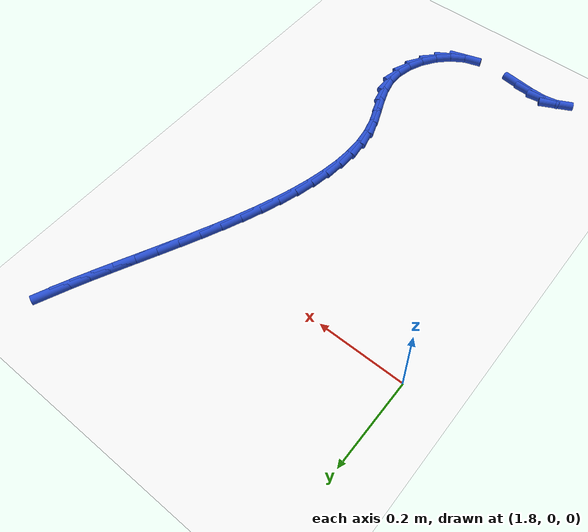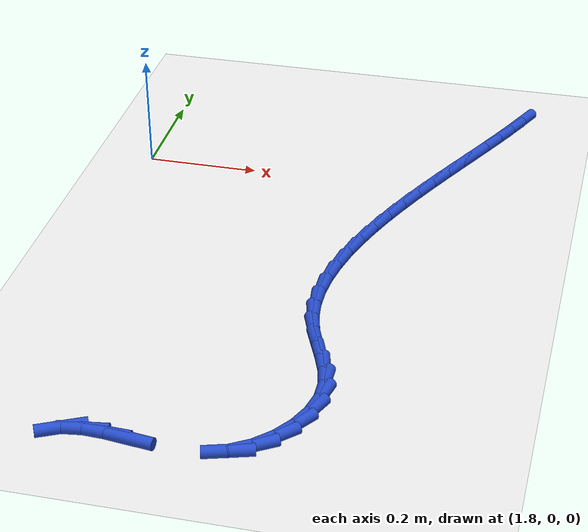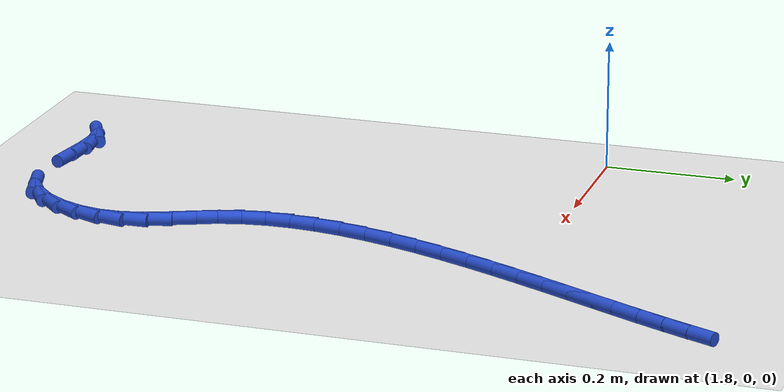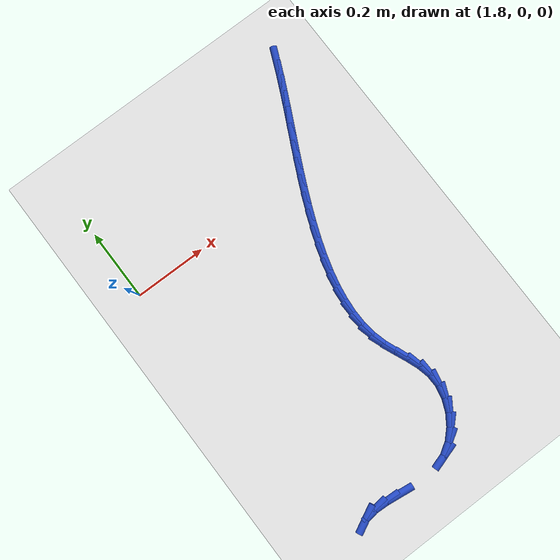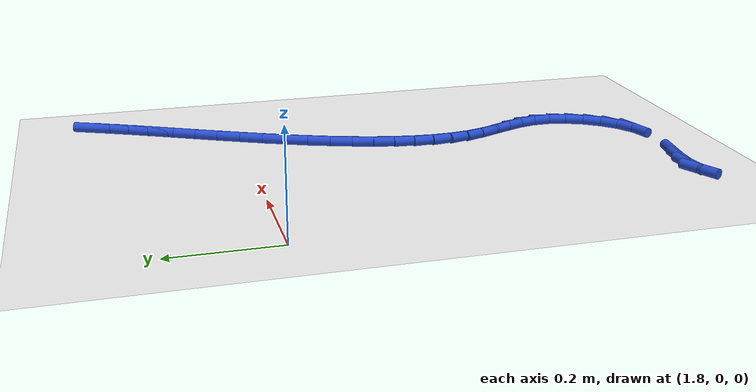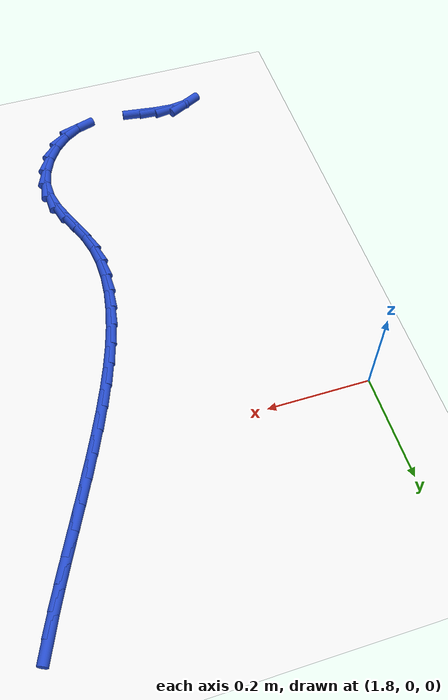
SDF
<sdf version="1.6">
 <world name="default">
  <model name="ground_plane">
   <static>1</static>
   <link name="link">
    <collision name="collision">
     <geometry><plane><normal>0 0 1</normal><size>100 100</size></plane></geometry>
     <surface><friction><ode><mu>100</mu><mu2>50</mu2></ode></friction></surface>
    </collision>
    <visual name="visual">
     <cast_shadows>0</cast_shadows>
     <geometry><plane><normal>0 0 1</normal><size>100 100</size></plane></geometry>
     <material>
      <script><uri>file://media/materials/scripts/gazebo.material</uri><name>Gazebo/WhiteGlow</name></script>
     </material>
    </visual>
   </link>
  </model>
  <model name="line">
   <link name="link_146">
    <pose>2.4614035723085523 0.2838034365155135 0.01 0 1.57 1.1549301951803006</pose>
    <collision name="collision">
     <geometry><cylinder><radius>0.01</radius><length>0.08</length></cylinder></geometry>
    </collision>
    <visual name="visual">
     <material>
      <script><name>Gazebo/Blue</name><uri>file://media/materials/scripts/gazebo.material</uri></script>
     </material>
     <geometry><cylinder><radius>0.01</radius><length>0.08</length></cylinder></geometry>
    </visual>
   </link>
   <link name="link_147">
    <pose>2.445280183010836 0.24729407132320744 0.01 0 1.57 1.1336173374537424</pose>
    <collision name="collision">
     <geometry><cylinder><radius>0.01</radius><length>0.08</length></cylinder></geometry>
    </collision>
    <visual name="visual">
     <material>
      <script><name>Gazebo/Blue</name><uri>file://media/materials/scripts/gazebo.material</uri></script>
     </material>
     <geometry><cylinder><radius>0.01</radius><length>0.08</length></cylinder></geometry>
    </visual>
   </link>
   <link name="link_148">
    <pose>2.427559085257884 0.20937490855530771 0.01 0 1.57 1.1197165428388876</pose>
    <collision name="collision">
     <geometry><cylinder><radius>0.01</radius><length>0.08</length></cylinder></geometry>
    </collision>
    <visual name="visual">
     <material>
      <script><name>Gazebo/Blue</name><uri>file://media/materials/scripts/gazebo.material</uri></script>
     </material>
     <geometry><cylinder><radius>0.01</radius><length>0.08</length></cylinder></geometry>
    </visual>
   </link>
   <link name="link_149">
    <pose>2.408594106023874 0.1702224137699297 0.01 0 1.57 1.11212798311117</pose>
    <collision name="collision">
     <geometry><cylinder><radius>0.01</radius><length>0.08</length></cylinder></geometry>
    </collision>
    <visual name="visual">
     <material>
      <script><name>Gazebo/Blue</name><uri>file://media/materials/scripts/gazebo.material</uri></script>
     </material>
     <geometry><cylinder><radius>0.01</radius><length>0.08</length></cylinder></geometry>
    </visual>
   </link>
   <link name="link_150">
    <pose>2.388739072282987 0.13001305252519355 0.01 0 1.57 1.1101440997464307</pose>
    <collision name="collision">
     <geometry><cylinder><radius>0.01</radius><length>0.08</length></cylinder></geometry>
    </collision>
    <visual name="visual">
     <material>
      <script><name>Gazebo/Blue</name><uri>file://media/materials/scripts/gazebo.material</uri></script>
     </material>
     <geometry><cylinder><radius>0.01</radius><length>0.08</length></cylinder></geometry>
    </visual>
   </link>
   <link name="link_151">
    <pose>2.3683478110094 0.0889232903792157 0.01 0 1.57 1.113354161055741</pose>
    <collision name="collision">
     <geometry><cylinder><radius>0.01</radius><length>0.08</length></cylinder></geometry>
    </collision>
    <visual name="visual">
     <material>
      <script><name>Gazebo/Blue</name><uri>file://media/materials/scripts/gazebo.material</uri></script>
     </material>
     <geometry><cylinder><radius>0.01</radius><length>0.08</length></cylinder></geometry>
    </visual>
   </link>
   <link name="link_152">
    <pose>2.3477741491772903 0.047129592890112676 0.01 0 1.57 1.121586313740963</pose>
    <collision name="collision">
     <geometry><cylinder><radius>0.01</radius><length>0.08</length></cylinder></geometry>
    </collision>
    <visual name="visual">
     <material>
      <script><name>Gazebo/Blue</name><uri>file://media/materials/scripts/gazebo.material</uri></script>
     </material>
     <geometry><cylinder><radius>0.01</radius><length>0.08</length></cylinder></geometry>
    </visual>
   </link>
   <link name="link_153">
    <pose>2.32737191376084 0.004808425616004766 0.01 0 1.57 1.1348756028969949</pose>
    <collision name="collision">
     <geometry><cylinder><radius>0.01</radius><length>0.08</length></cylinder></geometry>
    </collision>
    <visual name="visual">
     <material>
      <script><name>Gazebo/Blue</name><uri>file://media/materials/scripts/gazebo.material</uri></script>
     </material>
     <geometry><cylinder><radius>0.01</radius><length>0.08</length></cylinder></geometry>
    </visual>
   </link>
   <link name="link_154">
    <pose>2.307494931734225 -0.03786374588499303 0.01 0 1.57 1.1534509293335553</pose>
    <collision name="collision">
     <geometry><cylinder><radius>0.01</radius><length>0.08</length></cylinder></geometry>
    </collision>
    <visual name="visual">
     <material>
      <script><name>Gazebo/Blue</name><uri>file://media/materials/scripts/gazebo.material</uri></script>
     </material>
     <geometry><cylinder><radius>0.01</radius><length>0.08</length></cylinder></geometry>
    </visual>
   </link>
   <link name="link_155">
    <pose>2.288497030071626 -0.08071045605476032 0.01 0 1.57 1.1777366310051984</pose>
    <collision name="collision">
     <geometry><cylinder><radius>0.01</radius><length>0.08</length></cylinder></geometry>
    </collision>
    <visual name="visual">
     <material>
      <script><name>Gazebo/Blue</name><uri>file://media/materials/scripts/gazebo.material</uri></script>
     </material>
     <geometry><cylinder><radius>0.01</radius><length>0.08</length></cylinder></geometry>
    </visual>
   </link>
   <link name="link_156">
    <pose>2.270732035747219 -0.12355523933518187 0.01 0 1.57 1.2083656770249496</pose>
    <collision name="collision">
     <geometry><cylinder><radius>0.01</radius><length>0.08</length></cylinder></geometry>
    </collision>
    <visual name="visual">
     <material>
      <script><name>Gazebo/Blue</name><uri>file://media/materials/scripts/gazebo.material</uri></script>
     </material>
     <geometry><cylinder><radius>0.01</radius><length>0.08</length></cylinder></geometry>
    </visual>
   </link>
   <link name="link_157">
    <pose>2.2545537757351872 -0.16622163016813757 0.01 0 1.57 1.2462012889267395</pose>
    <collision name="collision">
     <geometry><cylinder><radius>0.01</radius><length>0.08</length></cylinder></geometry>
    </collision>
    <visual name="visual">
     <material>
      <script><name>Gazebo/Blue</name><uri>file://media/materials/scripts/gazebo.material</uri></script>
     </material>
     <geometry><cylinder><radius>0.01</radius><length>0.08</length></cylinder></geometry>
    </visual>
   </link>
   <link name="link_158">
    <pose>2.2403160770097053 -0.2085331629955122 0.01 0 1.57 1.2923615168987865</pose>
    <collision name="collision">
     <geometry><cylinder><radius>0.01</radius><length>0.08</length></cylinder></geometry>
    </collision>
    <visual name="visual">
     <material>
      <script><name>Gazebo/Blue</name><uri>file://media/materials/scripts/gazebo.material</uri></script>
     </material>
     <geometry><cylinder><radius>0.01</radius><length>0.08</length></cylinder></geometry>
    </visual>
   </link>
   <link name="link_159">
    <pose>2.228372766544953 -0.2503133722591855 0.01 0 1.57 1.348235454581995</pose>
    <collision name="collision">
     <geometry><cylinder><radius>0.01</radius><length>0.08</length></cylinder></geometry>
    </collision>
    <visual name="visual">
     <material>
      <script><name>Gazebo/Blue</name><uri>file://media/materials/scripts/gazebo.material</uri></script>
     </material>
     <geometry><cylinder><radius>0.01</radius><length>0.08</length></cylinder></geometry>
    </visual>
   </link>
   <link name="link_160">
    <pose>2.219077671315111 -0.291385792401041 0.01 0 1.57 1.4154679918575122</pose>
    <collision name="collision">
     <geometry><cylinder><radius>0.01</radius><length>0.08</length></cylinder></geometry>
    </collision>
    <visual name="visual">
     <material>
      <script><name>Gazebo/Blue</name><uri>file://media/materials/scripts/gazebo.material</uri></script>
     </material>
     <geometry><cylinder><radius>0.01</radius><length>0.08</length></cylinder></geometry>
    </visual>
   </link>
   <link name="link_161">
    <pose>2.2127846182943554 -0.3315739578629622 0.01 0 1.57 1.495869754893742</pose>
    <collision name="collision">
     <geometry><cylinder><radius>0.01</radius><length>0.08</length></cylinder></geometry>
    </collision>
    <visual name="visual">
     <material>
      <script><name>Gazebo/Blue</name><uri>file://media/materials/scripts/gazebo.material</uri></script>
     </material>
     <geometry><cylinder><radius>0.01</radius><length>0.08</length></cylinder></geometry>
    </visual>
   </link>
   <link name="link_162">
    <pose>2.209847434456866 -0.370701403086829 0.01 0 1.57 -1.550411000332216</pose>
    <collision name="collision">
     <geometry><cylinder><radius>0.01</radius><length>0.08</length></cylinder></geometry>
    </collision>
    <visual name="visual">
     <material>
      <script><name>Gazebo/Blue</name><uri>file://media/materials/scripts/gazebo.material</uri></script>
     </material>
     <geometry><cylinder><radius>0.01</radius><length>0.08</length></cylinder></geometry>
    </visual>
   </link>
   <link name="link_163">
    <pose>2.2106199467768217 -0.40859166251452594 0.01 0 1.57 -1.43898593780147</pose>
    <collision name="collision">
     <geometry><cylinder><radius>0.01</radius><length>0.08</length></cylinder></geometry>
    </collision>
    <visual name="visual">
     <material>
      <script><name>Gazebo/Blue</name><uri>file://media/materials/scripts/gazebo.material</uri></script>
     </material>
     <geometry><cylinder><radius>0.01</radius><length>0.08</length></cylinder></geometry>
    </visual>
   </link>
   <link name="link_164">
    <pose>2.2154559822284012 -0.4450682705879332 0.01 0 1.57 -1.3118913119048545</pose>
    <collision name="collision">
     <geometry><cylinder><radius>0.01</radius><length>0.08</length></cylinder></geometry>
    </collision>
    <visual name="visual">
     <material>
      <script><name>Gazebo/Blue</name><uri>file://media/materials/scripts/gazebo.material</uri></script>
     </material>
     <geometry><cylinder><radius>0.01</radius><length>0.08</length></cylinder></geometry>
    </visual>
   </link>
   <link name="link_165">
    <pose>2.224696630279301 -0.4799584676683134 0.01 0 1.57 -1.2020698811716208</pose>
    <collision name="collision">
     <geometry><cylinder><radius>0.01</radius><length>0.08</length></cylinder></geometry>
    </collision>
    <visual name="visual">
     <material>
      <script><name>Gazebo/Blue</name><uri>file://media/materials/scripts/gazebo.material</uri></script>
     </material>
     <geometry><cylinder><radius>0.01</radius><length>0.08</length></cylinder></geometry>
    </visual>
   </link>
   <link name="link_166">
    <pose>2.2376181287568198 -0.5133993078418109 0.01 0 1.57 -1.1652090039911625</pose>
    <collision name="collision">
     <geometry><cylinder><radius>0.01</radius><length>0.08</length></cylinder></geometry>
    </collision>
    <visual name="visual">
     <material>
      <script><name>Gazebo/Blue</name><uri>file://media/materials/scripts/gazebo.material</uri></script>
     </material>
     <geometry><cylinder><radius>0.01</radius><length>0.08</length></cylinder></geometry>
    </visual>
   </link>
   <link name="link_167">
    <pose>2.2516452636543702 -0.5460665166557837 0.01 0 1.57 -1.2083077251694583</pose>
    <collision name="collision">
     <geometry><cylinder><radius>0.01</radius><length>0.08</length></cylinder></geometry>
    </collision>
    <visual name="visual">
     <material>
      <script><name>Gazebo/Blue</name><uri>file://media/materials/scripts/gazebo.material</uri></script>
     </material>
     <geometry><cylinder><radius>0.01</radius><length>0.08</length></cylinder></geometry>
    </visual>
   </link>
   <link name="link_168">
    <pose>2.264017511585743 -0.5786897345758514 0.01 0 1.57 -1.3363101815183533</pose>
    <collision name="collision">
     <geometry><cylinder><radius>0.01</radius><length>0.08</length></cylinder></geometry>
    </collision>
    <visual name="visual">
     <material>
      <script><name>Gazebo/Blue</name><uri>file://media/materials/scripts/gazebo.material</uri></script>
     </material>
     <geometry><cylinder><radius>0.01</radius><length>0.08</length></cylinder></geometry>
    </visual>
   </link>
   <link name="link_169">
    <pose>2.2719743491647284 -0.6119986020676369 0.01 0 1.57 -1.5468238549405389</pose>
    <collision name="collision">
     <geometry><cylinder><radius>0.01</radius><length>0.08</length></cylinder></geometry>
    </collision>
    <visual name="visual">
     <material>
      <script><name>Gazebo/Blue</name><uri>file://media/materials/scripts/gazebo.material</uri></script>
     </material>
     <geometry><cylinder><radius>0.01</radius><length>0.08</length></cylinder></geometry>
    </visual>
   </link>
   <link name="link_170">
    <pose>2.2728060415252482 -0.6466855980788718 0.01 0 1.57 1.3662826314048135</pose>
    <collision name="collision">
     <geometry><cylinder><radius>0.01</radius><length>0.08</length></cylinder></geometry>
    </collision>
    <visual name="visual">
     <material>
      <script><name>Gazebo/Blue</name><uri>file://media/materials/scripts/gazebo.material</uri></script>
     </material>
     <geometry><cylinder><radius>0.01</radius><length>0.08</length></cylinder></geometry>
    </visual>
   </link>
   <link name="link_171">
    <pose>2.265428770302929 -0.6822535326122502 0.01 0 1.57 1.1674382742016638</pose>
    <collision name="collision">
     <geometry><cylinder><radius>0.01</radius><length>0.08</length></cylinder></geometry>
    </collision>
    <visual name="visual">
     <material>
      <script><name>Gazebo/Blue</name><uri>file://media/materials/scripts/gazebo.material</uri></script>
     </material>
     <geometry><cylinder><radius>0.01</radius><length>0.08</length></cylinder></geometry>
    </visual>
   </link>
   <link name="link_172">
    <pose>2.2506888123819846 -0.7167929817852694 0.01 0 1.57 0.9799172515714917</pose>
    <collision name="collision">
     <geometry><cylinder><radius>0.01</radius><length>0.08</length></cylinder></geometry>
    </collision>
    <visual name="visual">
     <material>
      <script><name>Gazebo/Blue</name><uri>file://media/materials/scripts/gazebo.material</uri></script>
     </material>
     <geometry><cylinder><radius>0.01</radius><length>0.08</length></cylinder></geometry>
    </visual>
   </link>
   <link name="link_173">
    <pose>2.2295446303614685 -0.7483124364048448 0.01 0 1.57 0.7838539857280067</pose>
    <collision name="collision">
     <geometry><cylinder><radius>0.01</radius><length>0.08</length></cylinder></geometry>
    </collision>
    <visual name="visual">
     <material>
      <script><name>Gazebo/Blue</name><uri>file://media/materials/scripts/gazebo.material</uri></script>
     </material>
     <geometry><cylinder><radius>0.01</radius><length>0.08</length></cylinder></geometry>
    </visual>
   </link>
   <link name="link_174">
    <pose>2.2029546868404304 -0.7748203872778952 0.01 0 1.57 0.56048666039865</pose>
    <collision name="collision">
     <geometry><cylinder><radius>0.01</radius><length>0.08</length></cylinder></geometry>
    </collision>
    <visual name="visual">
     <material>
      <script><name>Gazebo/Blue</name><uri>file://media/materials/scripts/gazebo.material</uri></script>
     </material>
     <geometry><cylinder><radius>0.01</radius><length>0.08</length></cylinder></geometry>
    </visual>
   </link>
   <link name="link_175">
    <pose>2.1718774444179214 -0.7943253252113355 0.01 0 1.57 0.2989922445513562</pose>
    <collision name="collision">
     <geometry><cylinder><radius>0.01</radius><length>0.08</length></cylinder></geometry>
    </collision>
    <visual name="visual">
     <material>
      <script><name>Gazebo/Blue</name><uri>file://media/materials/scripts/gazebo.material</uri></script>
     </material>
     <geometry><cylinder><radius>0.01</radius><length>0.08</length></cylinder></geometry>
    </visual>
   </link>
   <link name="link_179">
    <pose>2.023526407130509 -0.7994556894285804 0.01 0 1.57 -0.12998147387403225</pose>
    <collision name="collision">
     <geometry><cylinder><radius>0.01</radius><length>0.08</length></cylinder></geometry>
    </collision>
    <visual name="visual">
     <material>
      <script><name>Gazebo/Blue</name><uri>file://media/materials/scripts/gazebo.material</uri></script>
     </material>
     <geometry><cylinder><radius>0.01</radius><length>0.08</length></cylinder></geometry>
    </visual>
   </link>
   <link name="link_180">
    <pose>1.986210111259162 -0.7945777601295156 0.01 0 1.57 -0.04633775042571047</pose>
    <collision name="collision">
     <geometry><cylinder><radius>0.01</radius><length>0.08</length></cylinder></geometry>
    </collision>
    <visual name="visual">
     <material>
      <script><name>Gazebo/Blue</name><uri>file://media/materials/scripts/gazebo.material</uri></script>
     </material>
     <geometry><cylinder><radius>0.01</radius><length>0.08</length></cylinder></geometry>
    </visual>
   </link>
   <link name="link_181">
    <pose>1.9511552787758675 -0.7929522344481822 0.01 0 1.57 0.1410164341359541</pose>
    <collision name="collision">
     <geometry><cylinder><radius>0.01</radius><length>0.08</length></cylinder></geometry>
    </collision>
    <visual name="visual">
     <material>
      <script><name>Gazebo/Blue</name><uri>file://media/materials/scripts/gazebo.material</uri></script>
     </material>
     <geometry><cylinder><radius>0.01</radius><length>0.08</length></cylinder></geometry>
    </visual>
   </link>
   <link name="link_182">
    <pose>1.919538487726464 -0.7974405118447105 0.01 0 1.57 0.46253283063614475</pose>
    <collision name="collision">
     <geometry><cylinder><radius>0.01</radius><length>0.08</length></cylinder></geometry>
    </collision>
    <visual name="visual">
     <material>
      <script><name>Gazebo/Blue</name><uri>file://media/materials/scripts/gazebo.material</uri></script>
     </material>
     <geometry><cylinder><radius>0.01</radius><length>0.08</length></cylinder></geometry>
    </visual>
   </link>
  </model>
 </world>
</sdf>
